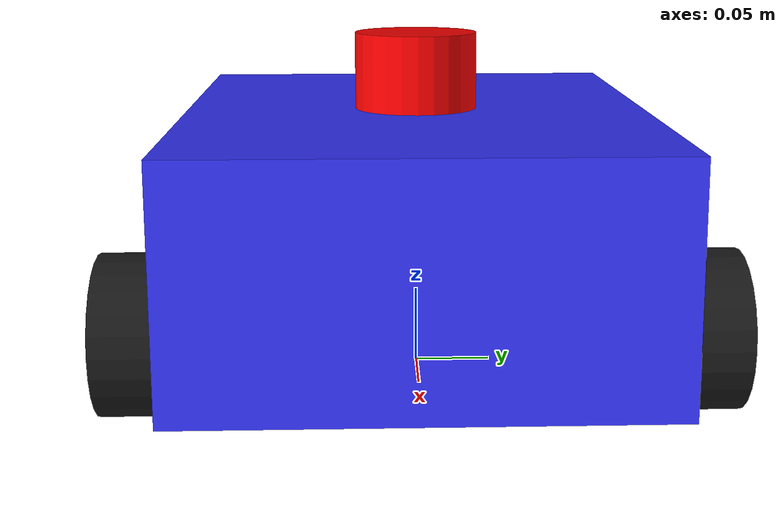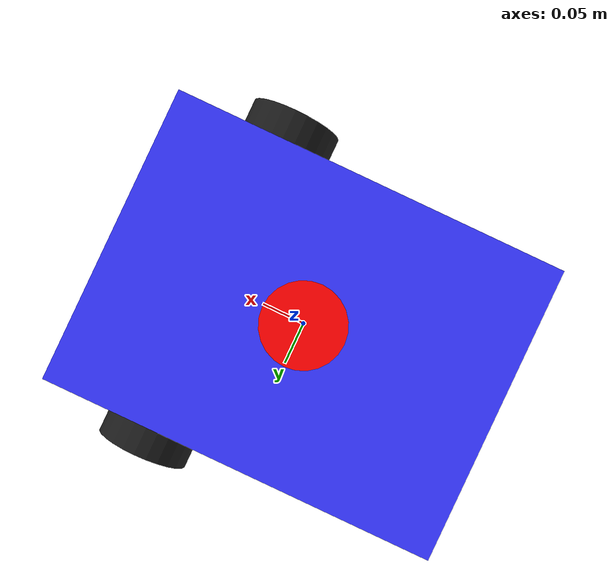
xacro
<?xml version="1.0"?>
<robot xmlns:xacro="http://www.ros.org/wiki/xacro">

    <xacro:include filename="common_properties.xacro" />

    <link name="base_footprint"/>

    <joint name="base_joint" type="fixed">
        <parent link="base_footprint"/>
        <child link="base_link"/>
        <origin xyz="0 0 0.1" rpy="0 0 0"/>
    </joint>

    <link name="base_link">
        <visual>
            <geometry><box size="0.4 0.3 0.15"/></geometry>
            <material name="blue"/>
        </visual>
        <collision>
            <geometry><box size="0.4 0.3 0.15"/></geometry>
        </collision>
        <xacro:box_inertia m="5.0" x="0.4" y="0.3" z="0.15" o_xyz="0 0 0" o_rpy="0 0 0" />
    </link>

    <joint name="caster_joint" type="fixed">
        <parent link="base_link"/>
        <child link="caster_link"/>
        <origin xyz="-0.15 0 -0.075" rpy="0 0 0"/>
    </joint>
    <link name="caster_link">
        <visual>
            <geometry><sphere radius="0.025"/></geometry>
            <material name="black"/>
        </visual>
        <collision>
            <geometry><sphere radius="0.025"/></geometry>
        </collision>
        <xacro:sphere_inertia m="0.5" r="0.025" o_xyz="0 0 0" o_rpy="0 0 0" />
    </link>

    <xacro:macro name="drive_wheel" params="prefix y_offset">
        <joint name="${prefix}_wheel_joint" type="continuous">
            <parent link="base_link"/>
            <child link="${prefix}_wheel"/>
            <origin xyz="0.1 ${y_offset} -0.05" rpy="-1.5708 0 0"/>
            <axis xyz="0 0 1"/>
        </joint>
        <link name="${prefix}_wheel">
            <visual>
                <geometry><cylinder radius="0.05" length="0.04"/></geometry>
                <material name="black"/>
            </visual>
            <collision>
                <geometry><cylinder radius="0.05" length="0.04"/></geometry>
            </collision>
            <xacro:cylinder_inertia m="1.0" r="0.05" l="0.04" o_xyz="0 0 0" o_rpy="0 0 0" />
        </link>
    </xacro:macro>

    <xacro:drive_wheel prefix="left" y_offset="0.175" />
    <xacro:drive_wheel prefix="right" y_offset="-0.175" />

    <joint name="lidar_joint" type="fixed">
        <parent link="base_link"/>
        <child link="lidar_link"/>
        <origin xyz="0 0 0.1" rpy="0 0 0"/>
    </joint>
    <link name="lidar_link">
        <visual>
            <geometry><cylinder radius="0.04" length="0.05"/></geometry>
            <material name="red"/>
        </visual>
        <collision>
            <geometry><cylinder radius="0.04" length="0.05"/></geometry>
        </collision>
        <xacro:cylinder_inertia m="0.2" r="0.04" l="0.05" o_xyz="0 0 0" o_rpy="0 0 0" />
    </link>

</robot>

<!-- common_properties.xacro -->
<robot xmlns:xacro="http://www.ros.org/wiki/xacro">

    <material name="blue"><color rgba="0.2 0.2 1.0 1.0"/></material>
    <material name="black"><color rgba="0.1 0.1 0.1 1.0"/></material>
    <material name="red"><color rgba="1.0 0.0 0.0 1.0"/></material>

    <xacro:macro name="box_inertia" params="m x y z o_xyz o_rpy">
        <inertial>
            <mass value="${m}" />
            <origin xyz="${o_xyz}" rpy="${o_rpy}" />
            <inertia ixx="${(m/12) * (z*z + y*y)}" ixy="0" ixz="0"
                     iyy="${(m/12) * (x*x + z*z)}" iyz="0"
                     izz="${(m/12) * (x*x + y*y)}" />
        </inertial>
    </xacro:macro>

    <xacro:macro name="cylinder_inertia" params="m r l o_xyz o_rpy">
        <inertial>
            <mass value="${m}" />
            <origin xyz="${o_xyz}" rpy="${o_rpy}" />
            <inertia ixx="${(m/12) * (3*r*r + l*l)}" ixy="0" ixz="0"
                     iyy="${(m/12) * (3*r*r + l*l)}" iyz="0"
                     izz="${(m/2) * (r*r)}" />
        </inertial>
    </xacro:macro>

    <xacro:macro name="sphere_inertia" params="m r o_xyz o_rpy">
        <inertial>
            <mass value="${m}" />
            <origin xyz="${o_xyz}" rpy="${o_rpy}" />
            <inertia ixx="${(2/5) * m * r * r}" ixy="0" ixz="0"
                     iyy="${(2/5) * m * r * r}" iyz="0"
                     izz="${(2/5) * m * r * r}" />
        </inertial>
    </xacro:macro>

</robot>
